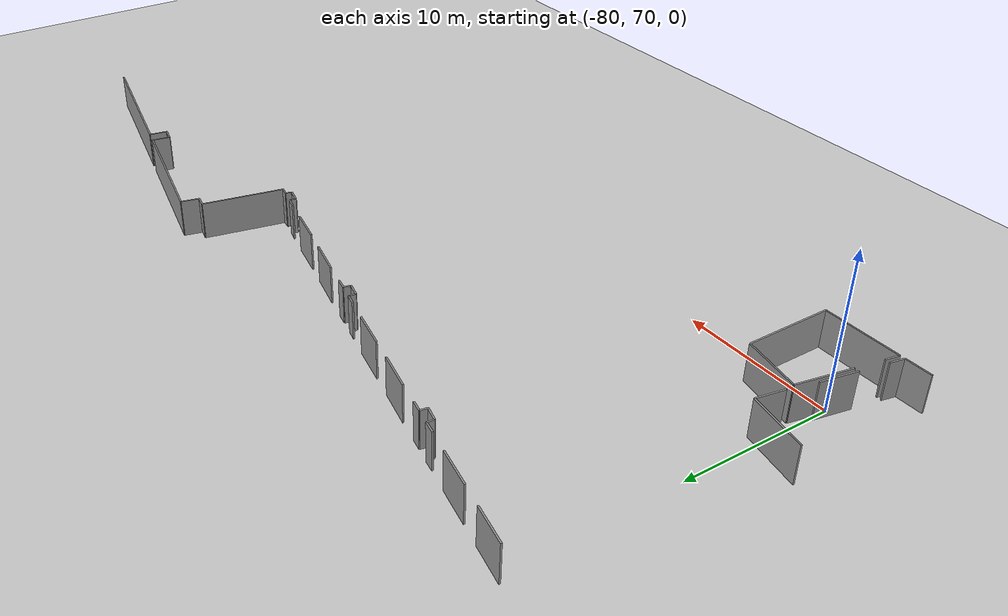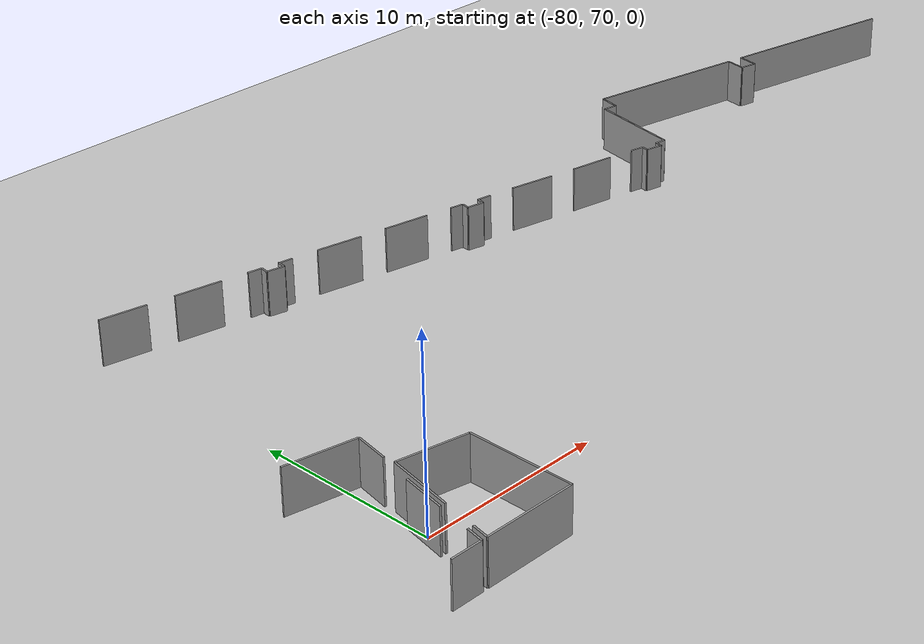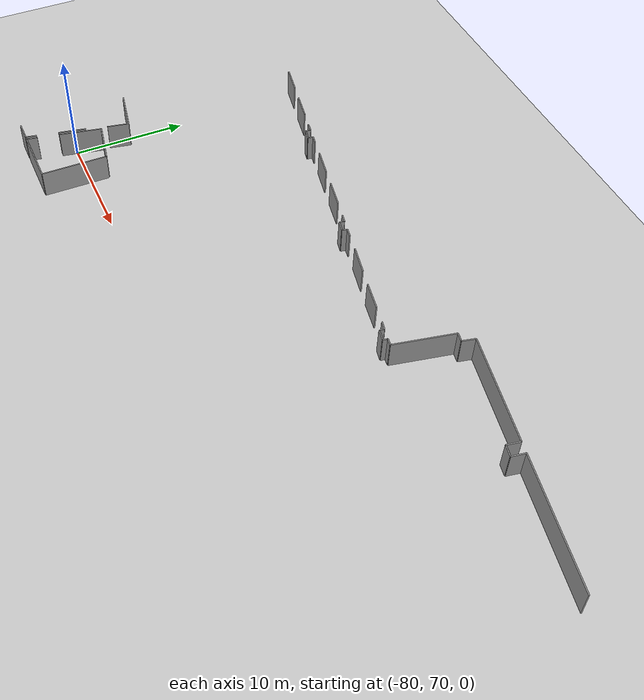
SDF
<sdf version="1.6">
 <world name="default">
  <model name="ground_plane">
   <static>1</static>
   <link name="link">
    <collision name="collision">
     <geometry><plane><normal>0 0 1</normal><size>100 100</size></plane></geometry>
     <surface><friction><ode><mu>100</mu><mu2>50</mu2></ode></friction></surface>
    </collision>
    <visual name="visual">
     <cast_shadows>0</cast_shadows>
     <geometry><plane><normal>0 0 1</normal><size>100 100</size></plane></geometry>
     <material>
      <script><uri>file://media/materials/scripts/gazebo.material</uri><name>Gazebo/Grey</name></script>
     </material>
    </visual>
   </link>
  </model>
  <model name="0510045925_40">
   <static>1</static>
   <link name="Wall_377">
    <collision name="Wall_377_Collision">
     <geometry><box><size>2.52295918724 0.1 2.5</size></box></geometry>
     <pose>1.26147959362 0 1.25 0 0 0</pose>
    </collision>
    <visual name="Wall_377_Visual">
     <pose>1.26147959362 0 1.25 0 0 0</pose>
     <geometry><box><size>2.52295918724 0.1 2.5</size></box></geometry>
     <material>
      <script><uri>file://media/materials/scripts/gazebo.material</uri><name>Gazebo/Grey</name></script>
      <ambient>1 1 1 1</ambient>
     </material>
    </visual>
    <pose>53.4464099896 -9.71465191239 0 0 0 -0.191496679823</pose>
   </link>
   <link name="Wall_378">
    <collision name="Wall_378_Collision">
     <geometry><box><size>2.53235075745 0.1 2.5</size></box></geometry>
     <pose>1.26617537872 0 1.25 0 0 0</pose>
    </collision>
    <visual name="Wall_378_Visual">
     <pose>1.26617537872 0 1.25 0 0 0</pose>
     <geometry><box><size>2.53235075745 0.1 2.5</size></box></geometry>
     <material>
      <script><uri>file://media/materials/scripts/gazebo.material</uri><name>Gazebo/Grey</name></script>
      <ambient>1 1 1 1</ambient>
     </material>
    </visual>
    <pose>57.3633156519 -10.4785919139 0 0 0 -0.1895529688</pose>
   </link>
   <link name="Wall_379">
    <collision name="Wall_379_Collision">
     <geometry><box><size>0.775136067452 0.1 2.5</size></box></geometry>
     <pose>0.387568033726 0 1.25 0 0 0</pose>
    </collision>
    <visual name="Wall_379_Visual">
     <pose>0.387568033726 0 1.25 0 0 0</pose>
     <geometry><box><size>0.775136067452 0.1 2.5</size></box></geometry>
     <material>
      <script><uri>file://media/materials/scripts/gazebo.material</uri><name>Gazebo/Grey</name></script>
      <ambient>1 1 1 1</ambient>
     </material>
    </visual>
    <pose>61.2850435268 -11.2468465267 0 0 0 -0.172092636428</pose>
   </link>
   <link name="Wall_380">
    <collision name="Wall_380_Collision">
     <geometry><box><size>0.458396392379 0.1 2.5</size></box></geometry>
     <pose>0.229198196189 0 1.25 0 0 0</pose>
    </collision>
    <visual name="Wall_380_Visual">
     <pose>0.229198196189 0 1.25 0 0 0</pose>
     <geometry><box><size>0.458396392379 0.1 2.5</size></box></geometry>
     <material>
      <script><uri>file://media/materials/scripts/gazebo.material</uri><name>Gazebo/Grey</name></script>
      <ambient>1 1 1 1</ambient>
     </material>
    </visual>
    <pose>62.0487297277 -11.3795842745 0 0 0 -1.6767455424</pose>
   </link>
   <link name="Wall_381">
    <collision name="Wall_381_Collision">
     <geometry><box><size>0.961773258119 0.1 2.5</size></box></geometry>
     <pose>0.48088662906 0 1.25 0 0 0</pose>
    </collision>
    <visual name="Wall_381_Visual">
     <pose>0.48088662906 0 1.25 0 0 0</pose>
     <geometry><box><size>0.961773258119 0.1 2.5</size></box></geometry>
     <material>
      <script><uri>file://media/materials/scripts/gazebo.material</uri><name>Gazebo/Grey</name></script>
      <ambient>1 1 1 1</ambient>
     </material>
    </visual>
    <pose>62.0002538007 -11.8354102688 0 0 0 -0.227313108857</pose>
   </link>
   <link name="Wall_382">
    <collision name="Wall_382_Collision">
     <geometry><box><size>0.481017547391 0.1 2.5</size></box></geometry>
     <pose>0.240508773696 0 1.25 0 0 0</pose>
    </collision>
    <visual name="Wall_382_Visual">
     <pose>0.240508773696 0 1.25 0 0 0</pose>
     <geometry><box><size>0.481017547391 0.1 2.5</size></box></geometry>
     <material>
      <script><uri>file://media/materials/scripts/gazebo.material</uri><name>Gazebo/Grey</name></script>
      <ambient>1 1 1 1</ambient>
     </material>
    </visual>
    <pose>62.9372858557 -12.0521560366 0 0 0 1.44382353718</pose>
   </link>
   <link name="Wall_383">
    <collision name="Wall_383_Collision">
     <geometry><box><size>0.767528795815 0.1 2.5</size></box></geometry>
     <pose>0.383764397907 0 1.25 0 0 0</pose>
    </collision>
    <visual name="Wall_383_Visual">
     <pose>0.383764397907 0 1.25 0 0 0</pose>
     <geometry><box><size>0.767528795815 0.1 2.5</size></box></geometry>
     <material>
      <script><uri>file://media/materials/scripts/gazebo.material</uri><name>Gazebo/Grey</name></script>
      <ambient>1 1 1 1</ambient>
     </material>
    </visual>
    <pose>62.9981980153 -11.5750107865 0 0 0 -0.192985731107</pose>
   </link>
   <link name="Wall_384">
    <collision name="Wall_384_Collision">
     <geometry><box><size>2.54063787111 0.1 2.5</size></box></geometry>
     <pose>1.27031893556 0 1.25 0 0 0</pose>
    </collision>
    <visual name="Wall_384_Visual">
     <pose>1.27031893556 0 1.25 0 0 0</pose>
     <geometry><box><size>2.54063787111 0.1 2.5</size></box></geometry>
     <material>
      <script><uri>file://media/materials/scripts/gazebo.material</uri><name>Gazebo/Grey</name></script>
      <ambient>1 1 1 1</ambient>
     </material>
    </visual>
    <pose>65.1935737672 -11.9767772392 0 0 0 -0.198904090728</pose>
   </link>
   <link name="Wall_385">
    <collision name="Wall_385_Collision">
     <geometry><box><size>2.54470820267 0.1 2.5</size></box></geometry>
     <pose>1.27235410134 0 1.25 0 0 0</pose>
    </collision>
    <visual name="Wall_385_Visual">
     <pose>1.27235410134 0 1.25 0 0 0</pose>
     <geometry><box><size>2.54470820267 0.1 2.5</size></box></geometry>
     <material>
      <script><uri>file://media/materials/scripts/gazebo.material</uri><name>Gazebo/Grey</name></script>
      <ambient>1 1 1 1</ambient>
     </material>
    </visual>
    <pose>69.135859496 -12.7506154666 0 0 0 -0.188925993385</pose>
   </link>
   <link name="Wall_386">
    <collision name="Wall_386_Collision">
     <geometry><box><size>0.74806126089 0.1 2.5</size></box></geometry>
     <pose>0.374030630445 0 1.25 0 0 0</pose>
    </collision>
    <visual name="Wall_386_Visual">
     <pose>0.374030630445 0 1.25 0 0 0</pose>
     <geometry><box><size>0.74806126089 0.1 2.5</size></box></geometry>
     <material>
      <script><uri>file://media/materials/scripts/gazebo.material</uri><name>Gazebo/Grey</name></script>
      <ambient>1 1 1 1</ambient>
     </material>
    </visual>
    <pose>73.0778914241 -13.5236922921 0 0 0 -0.217491350187</pose>
   </link>
   <link name="Wall_387">
    <collision name="Wall_387_Collision">
     <geometry><box><size>0.444754074904 0.1 2.5</size></box></geometry>
     <pose>0.222377037452 0 1.25 0 0 0</pose>
    </collision>
    <visual name="Wall_387_Visual">
     <pose>0.222377037452 0 1.25 0 0 0</pose>
     <geometry><box><size>0.444754074904 0.1 2.5</size></box></geometry>
     <material>
      <script><uri>file://media/materials/scripts/gazebo.material</uri><name>Gazebo/Grey</name></script>
      <ambient>1 1 1 1</ambient>
     </material>
    </visual>
    <pose>73.8083297378 -13.685109515 0 0 0 -1.69897349978</pose>
   </link>
   <link name="Wall_388">
    <collision name="Wall_388_Collision">
     <geometry><box><size>0.94263261688 0.1 2.5</size></box></geometry>
     <pose>0.47131630844 0 1.25 0 0 0</pose>
    </collision>
    <visual name="Wall_388_Visual">
     <pose>0.47131630844 0 1.25 0 0 0</pose>
     <geometry><box><size>0.94263261688 0.1 2.5</size></box></geometry>
     <material>
      <script><uri>file://media/materials/scripts/gazebo.material</uri><name>Gazebo/Grey</name></script>
      <ambient>1 1 1 1</ambient>
     </material>
    </visual>
    <pose>73.7514783889 -14.1262150707 0 0 0 -0.218201683482</pose>
   </link>
   <link name="Wall_389">
    <collision name="Wall_389_Collision">
     <geometry><box><size>0.466309184936 0.1 2.5</size></box></geometry>
     <pose>0.233154592468 0 1.25 0 0 0</pose>
    </collision>
    <visual name="Wall_389_Visual">
     <pose>0.233154592468 0 1.25 0 0 0</pose>
     <geometry><box><size>0.466309184936 0.1 2.5</size></box></geometry>
     <material>
      <script><uri>file://media/materials/scripts/gazebo.material</uri><name>Gazebo/Grey</name></script>
      <ambient>1 1 1 1</ambient>
     </material>
    </visual>
    <pose>74.6717596 -14.3302708053 0 0 0 1.35578755703</pose>
   </link>
   <link name="Wall_390">
    <collision name="Wall_390_Collision">
     <geometry><box><size>0.781586760896 0.1 2.5</size></box></geometry>
     <pose>0.390793380448 0 1.25 0 0 0</pose>
    </collision>
    <visual name="Wall_390_Visual">
     <pose>0.390793380448 0 1.25 0 0 0</pose>
     <geometry><box><size>0.781586760896 0.1 2.5</size></box></geometry>
     <material>
      <script><uri>file://media/materials/scripts/gazebo.material</uri><name>Gazebo/Grey</name></script>
      <ambient>1 1 1 1</ambient>
     </material>
    </visual>
    <pose>74.7712494607 -13.8746986117 0 0 0 -0.18319359774</pose>
   </link>
   <link name="Wall_391">
    <collision name="Wall_391_Collision">
     <geometry><box><size>2.54336518406 0.1 2.5</size></box></geometry>
     <pose>1.27168259203 0 1.25 0 0 0</pose>
    </collision>
    <visual name="Wall_391_Visual">
     <pose>1.27168259203 0 1.25 0 0 0</pose>
     <geometry><box><size>2.54336518406 0.1 2.5</size></box></geometry>
     <material>
      <script><uri>file://media/materials/scripts/gazebo.material</uri><name>Gazebo/Grey</name></script>
      <ambient>1 1 1 1</ambient>
     </material>
    </visual>
    <pose>76.9937818837 -14.280525875 0 0 0 -0.203168828779</pose>
   </link>
   <link name="Wall_392">
    <collision name="Wall_392_Collision">
     <geometry><box><size>2.50700049669 0.1 2.5</size></box></geometry>
     <pose>1.25350024835 0 1.25 0 0 0</pose>
    </collision>
    <visual name="Wall_392_Visual">
     <pose>1.25350024835 0 1.25 0 0 0</pose>
     <geometry><box><size>2.50700049669 0.1 2.5</size></box></geometry>
     <material>
      <script><uri>file://media/materials/scripts/gazebo.material</uri><name>Gazebo/Grey</name></script>
      <ambient>1 1 1 1</ambient>
     </material>
    </visual>
    <pose>80.9276921906 -15.0883733915 0 0 0 -0.182941223257</pose>
   </link>
   <link name="Wall_393">
    <collision name="Wall_393_Collision">
     <geometry><box><size>0.771572221436 0.1 2.5</size></box></geometry>
     <pose>0.385786110718 0 1.25 0 0 0</pose>
    </collision>
    <visual name="Wall_393_Visual">
     <pose>0.385786110718 0 1.25 0 0 0</pose>
     <geometry><box><size>0.771572221436 0.1 2.5</size></box></geometry>
     <material>
      <script><uri>file://media/materials/scripts/gazebo.material</uri><name>Gazebo/Grey</name></script>
      <ambient>1 1 1 1</ambient>
     </material>
    </visual>
    <pose>84.8575416868 -15.8188117053 0 0 0 -0.235724100473</pose>
   </link>
   <link name="Wall_394">
    <collision name="Wall_394_Collision">
     <geometry><box><size>0.409485566864 0.1 2.5</size></box></geometry>
     <pose>0.204742783432 0 1.25 0 0 0</pose>
    </collision>
    <visual name="Wall_394_Visual">
     <pose>0.204742783432 0 1.25 0 0 0</pose>
     <geometry><box><size>0.409485566864 0.1 2.5</size></box></geometry>
     <material>
      <script><uri>file://media/materials/scripts/gazebo.material</uri><name>Gazebo/Grey</name></script>
      <ambient>1 1 1 1</ambient>
     </material>
    </visual>
    <pose>85.6077764524 -15.9990101774 0 0 0 -1.73767722176</pose>
   </link>
   <link name="Wall_395">
    <collision name="Wall_395_Collision">
     <geometry><box><size>0.946874635006 0.1 2.5</size></box></geometry>
     <pose>0.473437317503 0 1.25 0 0 0</pose>
    </collision>
    <visual name="Wall_395_Visual">
     <pose>0.473437317503 0 1.25 0 0 0</pose>
     <geometry><box><size>0.946874635006 0.1 2.5</size></box></geometry>
     <material>
      <script><uri>file://media/materials/scripts/gazebo.material</uri><name>Gazebo/Grey</name></script>
      <ambient>1 1 1 1</ambient>
     </material>
    </visual>
    <pose>85.5397578742 -16.4028070354 0 0 0 -0.203230535419</pose>
   </link>
   <link name="Wall_396">
    <collision name="Wall_396_Collision">
     <geometry><box><size>0.414343635679 0.1 2.5</size></box></geometry>
     <pose>0.20717181784 0 1.25 0 0 0</pose>
    </collision>
    <visual name="Wall_396_Visual">
     <pose>0.20717181784 0 1.25 0 0 0</pose>
     <geometry><box><size>0.414343635679 0.1 2.5</size></box></geometry>
     <material>
      <script><uri>file://media/materials/scripts/gazebo.material</uri><name>Gazebo/Grey</name></script>
      <ambient>1 1 1 1</ambient>
     </material>
    </visual>
    <pose>86.4671455039 -16.5939189361 0 0 0 1.34468615225</pose>
   </link>
   <link name="Wall_397">
    <collision name="Wall_397_Collision">
     <geometry><box><size>0.592698025316 0.1 2.5</size></box></geometry>
     <pose>0.296349012658 0 1.25 0 0 0</pose>
    </collision>
    <visual name="Wall_397_Visual">
     <pose>0.296349012658 0 1.25 0 0 0</pose>
     <geometry><box><size>0.592698025316 0.1 2.5</size></box></geometry>
     <material>
      <script><uri>file://media/materials/scripts/gazebo.material</uri><name>Gazebo/Grey</name></script>
      <ambient>1 1 1 1</ambient>
     </material>
    </visual>
    <pose>86.5600365473 -16.1901220781 0 0 0 -0.163881518642</pose>
   </link>
   <link name="Wall_398">
    <collision name="Wall_398_Collision">
     <geometry><box><size>5.36197957302 0.1 2.5</size></box></geometry>
     <pose>2.68098978651 0 1.25 0 0 0</pose>
    </collision>
    <visual name="Wall_398_Visual">
     <pose>2.68098978651 0 1.25 0 0 0</pose>
     <geometry><box><size>5.36197957302 0.1 2.5</size></box></geometry>
     <material>
      <script><uri>file://media/materials/scripts/gazebo.material</uri><name>Gazebo/Grey</name></script>
      <ambient>1 1 1 1</ambient>
     </material>
    </visual>
    <pose>87.1447932794 -16.2868201315 0 0 0 1.37891480263</pose>
   </link>
   <link name="Wall_399">
    <collision name="Wall_399_Collision">
     <geometry><box><size>0.784905956937 0.1 2.5</size></box></geometry>
     <pose>0.392452978469 0 1.25 0 0 0</pose>
    </collision>
    <visual name="Wall_399_Visual">
     <pose>0.392452978469 0 1.25 0 0 0</pose>
     <geometry><box><size>0.784905956937 0.1 2.5</size></box></geometry>
     <material>
      <script><uri>file://media/materials/scripts/gazebo.material</uri><name>Gazebo/Grey</name></script>
      <ambient>1 1 1 1</ambient>
     </material>
    </visual>
    <pose>88.1673561585 -11.0232481409 0 0 0 -0.184712323194</pose>
   </link>
   <link name="Wall_400">
    <collision name="Wall_400_Collision">
     <geometry><box><size>1.19008495787 0.1 2.5</size></box></geometry>
     <pose>0.595042478934 0 1.25 0 0 0</pose>
    </collision>
    <visual name="Wall_400_Visual">
     <pose>0.595042478934 0 1.25 0 0 0</pose>
     <geometry><box><size>1.19008495787 0.1 2.5</size></box></geometry>
     <material>
      <script><uri>file://media/materials/scripts/gazebo.material</uri><name>Gazebo/Grey</name></script>
      <ambient>1 1 1 1</ambient>
     </material>
    </visual>
    <pose>88.9389101799 -11.1674069186 0 0 0 1.35871992941</pose>
   </link>
   <link name="Wall_401">
    <collision name="Wall_401_Collision">
     <geometry><box><size>9.59836641296 0.1 2.5</size></box></geometry>
     <pose>4.79918320648 0 1.25 0 0 0</pose>
    </collision>
    <visual name="Wall_401_Visual">
     <pose>4.79918320648 0 1.25 0 0 0</pose>
     <geometry><box><size>9.59836641296 0.1 2.5</size></box></geometry>
     <material>
      <script><uri>file://media/materials/scripts/gazebo.material</uri><name>Gazebo/Grey</name></script>
      <ambient>1 1 1 1</ambient>
     </material>
    </visual>
    <pose>89.1894114363 -10.0039846704 0 0 0 -0.193599606376</pose>
   </link>
   <link name="Wall_402">
    <collision name="Wall_402_Collision">
     <geometry><box><size>1.18694810752 0.1 2.5</size></box></geometry>
     <pose>0.593474053762 0 1.25 0 0 0</pose>
    </collision>
    <visual name="Wall_402_Visual">
     <pose>0.593474053762 0 1.25 0 0 0</pose>
     <geometry><box><size>1.18694810752 0.1 2.5</size></box></geometry>
     <material>
      <script><uri>file://media/materials/scripts/gazebo.material</uri><name>Gazebo/Grey</name></script>
      <ambient>1 1 1 1</ambient>
     </material>
    </visual>
    <pose>98.6084617142 -11.8506383087 0 0 0 -1.73988213014</pose>
   </link>
   <link name="Wall_403">
    <collision name="Wall_403_Collision">
     <geometry><box><size>0.980017837315 0.1 2.5</size></box></geometry>
     <pose>0.490008918657 0 1.25 0 0 0</pose>
    </collision>
    <visual name="Wall_403_Visual">
     <pose>0.490008918657 0 1.25 0 0 0</pose>
     <geometry><box><size>0.980017837315 0.1 2.5</size></box></geometry>
     <material>
      <script><uri>file://media/materials/scripts/gazebo.material</uri><name>Gazebo/Grey</name></script>
      <ambient>1 1 1 1</ambient>
     </material>
    </visual>
    <pose>98.4087205908 -13.0206593741 0 0 0 -0.201814242047</pose>
   </link>
   <link name="Wall_404">
    <collision name="Wall_404_Collision">
     <geometry><box><size>1.20017729571 0.1 2.5</size></box></geometry>
     <pose>0.600088647853 0 1.25 0 0 0</pose>
    </collision>
    <visual name="Wall_404_Visual">
     <pose>0.600088647853 0 1.25 0 0 0</pose>
     <geometry><box><size>1.20017729571 0.1 2.5</size></box></geometry>
     <material>
      <script><uri>file://media/materials/scripts/gazebo.material</uri><name>Gazebo/Grey</name></script>
      <ambient>1 1 1 1</ambient>
     </material>
    </visual>
    <pose>99.3688485064 -13.2171010888 0 0 0 1.4012324368</pose>
   </link>
   <link name="Wall_405">
    <collision name="Wall_405_Collision">
     <geometry><box><size>11.0039111432 0.1 2.5</size></box></geometry>
     <pose>5.50195557162 0 1.25 0 0 0</pose>
    </collision>
    <visual name="Wall_405_Visual">
     <pose>5.50195557162 0 1.25 0 0 0</pose>
     <geometry><box><size>11.0039111432 0.1 2.5</size></box></geometry>
     <material>
      <script><uri>file://media/materials/scripts/gazebo.material</uri><name>Gazebo/Grey</name></script>
      <ambient>1 1 1 1</ambient>
     </material>
    </visual>
    <pose>99.571381437 -12.0341361894 0 0 0 -0.192460578449</pose>
   </link>
   <link name="Wall_494">
    <collision name="Wall_494_Collision">
     <geometry><box><size>1.93431044433 0.1 2.5</size></box></geometry>
     <pose>0.967155222164 0 1.25 0 0 0</pose>
    </collision>
    <visual name="Wall_494_Visual">
     <pose>0.967155222164 0 1.25 0 0 0</pose>
     <geometry><box><size>1.93431044433 0.1 2.5</size></box></geometry>
     <material>
      <script><uri>file://media/materials/scripts/gazebo.material</uri><name>Gazebo/Grey</name></script>
      <ambient>1 1 1 1</ambient>
     </material>
    </visual>
    <pose>54.3654221974 -28.0999720819 0 0 0 1.38485192495</pose>
   </link>
   <link name="Wall_495">
    <collision name="Wall_495_Collision">
     <geometry><box><size>3.85922779155 0.1 2.5</size></box></geometry>
     <pose>1.92961389577 0 1.25 0 0 0</pose>
    </collision>
    <visual name="Wall_495_Visual">
     <pose>1.92961389577 0 1.25 0 0 0</pose>
     <geometry><box><size>3.85922779155 0.1 2.5</size></box></geometry>
     <material>
      <script><uri>file://media/materials/scripts/gazebo.material</uri><name>Gazebo/Grey</name></script>
      <ambient>1 1 1 1</ambient>
     </material>
    </visual>
    <pose>54.7230273343 -26.1990051014 0 0 0 2.95016867354</pose>
   </link>
   <link name="Wall_742">
    <collision name="Wall_742_Collision">
     <geometry><box><size>3.84354589064 0.1 2.5</size></box></geometry>
     <pose>1.92177294532 0 1.25 0 0 0</pose>
    </collision>
    <visual name="Wall_742_Visual">
     <pose>1.92177294532 0 1.25 0 0 0</pose>
     <geometry><box><size>3.84354589064 0.1 2.5</size></box></geometry>
     <material>
      <script><uri>file://media/materials/scripts/gazebo.material</uri><name>Gazebo/Grey</name></script>
      <ambient>1 1 1 1</ambient>
     </material>
    </visual>
    <pose>54.4253191543 -28.6918352326 0 0 0 -0.191542069244</pose>
   </link>
   <link name="Wall_743">
    <collision name="Wall_743_Collision">
     <geometry><box><size>5.86025735387 0.1 2.5</size></box></geometry>
     <pose>2.93012867694 0 1.25 0 0 0</pose>
    </collision>
    <visual name="Wall_743_Visual">
     <pose>2.93012867694 0 1.25 0 0 0</pose>
     <geometry><box><size>5.86025735387 0.1 2.5</size></box></geometry>
     <material>
      <script><uri>file://media/materials/scripts/gazebo.material</uri><name>Gazebo/Grey</name></script>
      <ambient>1 1 1 1</ambient>
     </material>
    </visual>
    <pose>58.1985736403 -29.4235425497 0 0 0 -1.57079632679</pose>
   </link>
   <link name="Wall_744">
    <collision name="Wall_744_Collision">
     <geometry><box><size>5.04301921271 0.1 2.5</size></box></geometry>
     <pose>2.52150960636 0 1.25 0 0 0</pose>
    </collision>
    <visual name="Wall_744_Visual">
     <pose>2.52150960636 0 1.25 0 0 0</pose>
     <geometry><box><size>5.04301921271 0.1 2.5</size></box></geometry>
     <material>
      <script><uri>file://media/materials/scripts/gazebo.material</uri><name>Gazebo/Grey</name></script>
      <ambient>1 1 1 1</ambient>
     </material>
    </visual>
    <pose>58.1985736403 -35.2837999036 0 0 0 3.14159265359</pose>
   </link>
   <link name="Wall_745">
    <collision name="Wall_745_Collision">
     <geometry><box><size>0.960921259951 0.1 2.5</size></box></geometry>
     <pose>0.480460629976 0 1.25 0 0 0</pose>
    </collision>
    <visual name="Wall_745_Visual">
     <pose>0.480460629976 0 1.25 0 0 0</pose>
     <geometry><box><size>0.960921259951 0.1 2.5</size></box></geometry>
     <material>
      <script><uri>file://media/materials/scripts/gazebo.material</uri><name>Gazebo/Grey</name></script>
      <ambient>1 1 1 1</ambient>
     </material>
    </visual>
    <pose>53.1555544276 -35.2837999036 0 0 0 1.38080803888</pose>
   </link>
   <link name="Wall_746">
    <collision name="Wall_746_Collision">
     <geometry><box><size>3.79155980991 0.1 2.5</size></box></geometry>
     <pose>1.89577990496 0 1.25 0 0 0</pose>
    </collision>
    <visual name="Wall_746_Visual">
     <pose>1.89577990496 0 1.25 0 0 0</pose>
     <geometry><box><size>3.79155980991 0.1 2.5</size></box></geometry>
     <material>
      <script><uri>file://media/materials/scripts/gazebo.material</uri><name>Gazebo/Grey</name></script>
      <ambient>1 1 1 1</ambient>
     </material>
    </visual>
    <pose>53.6997030532 -32.4133143829 0 0 0 1.37823177408</pose>
   </link>
   <link name="Wall_763">
    <collision name="Wall_763_Collision">
     <geometry><box><size>2.47475900798 0.1 2.5</size></box></geometry>
     <pose>1.23737950399 0 1.25 0 0 0</pose>
    </collision>
    <visual name="Wall_763_Visual">
     <pose>1.23737950399 0 1.25 0 0 0</pose>
     <geometry><box><size>2.47475900798 0.1 2.5</size></box></geometry>
     <material>
      <script><uri>file://media/materials/scripts/gazebo.material</uri><name>Gazebo/Grey</name></script>
      <ambient>1 1 1 1</ambient>
     </material>
    </visual>
    <pose>53.884723738 -29.9796198066 0 0 0 -1.7636664846</pose>
   </link>
   <link name="Wall_764">
    <collision name="Wall_764_Collision">
     <geometry><box><size>0.97926367791 0.1 2.5</size></box></geometry>
     <pose>0.489631838955 0 1.25 0 0 0</pose>
    </collision>
    <visual name="Wall_764_Visual">
     <pose>0.489631838955 0 1.25 0 0 0</pose>
     <geometry><box><size>0.97926367791 0.1 2.5</size></box></geometry>
     <material>
      <script><uri>file://media/materials/scripts/gazebo.material</uri><name>Gazebo/Grey</name></script>
      <ambient>1 1 1 1</ambient>
     </material>
    </visual>
    <pose>53.0334763077 -34.3254485927 0 0 0 -1.76615874926</pose>
   </link>
   <link name="Wall_765">
    <collision name="Wall_765_Collision">
     <geometry><box><size>1.73218953834 0.1 2.5</size></box></geometry>
     <pose>0.866094769168 0 1.25 0 0 0</pose>
    </collision>
    <visual name="Wall_765_Visual">
     <pose>0.866094769168 0 1.25 0 0 0</pose>
     <geometry><box><size>1.73218953834 0.1 2.5</size></box></geometry>
     <material>
      <script><uri>file://media/materials/scripts/gazebo.material</uri><name>Gazebo/Grey</name></script>
      <ambient>1 1 1 1</ambient>
     </material>
    </visual>
    <pose>52.8433796097 -35.2860841095 0 0 0 3.14159265359</pose>
   </link>
   <pose>-133.95 101.083118449 0 0 0 0</pose>
  </model>
 </world>
</sdf>
